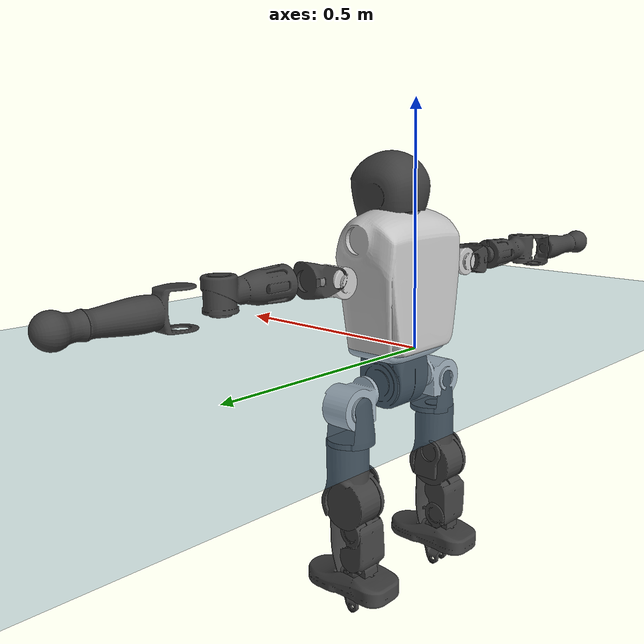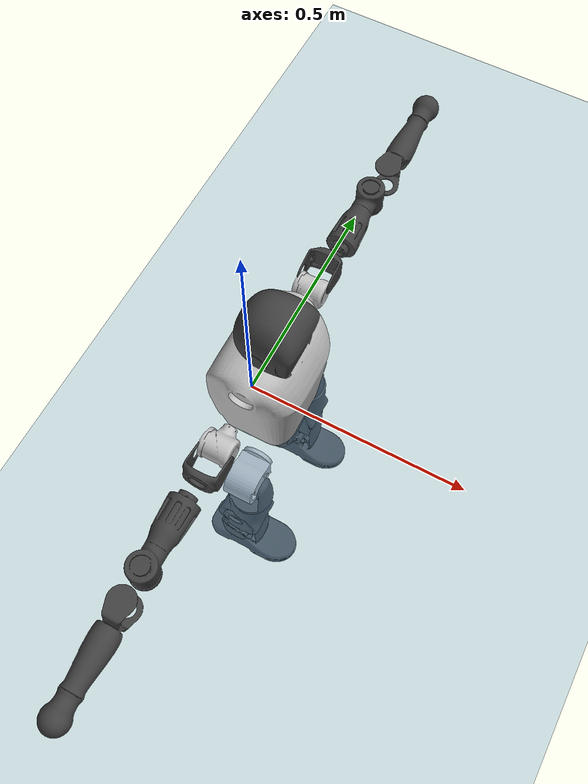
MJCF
<mujoco model="T1">
  <compiler angle="radian" assetdir="assets" balanceinertia="true" inertiafromgeom="false"/>

  <option timestep="0.005" density="1.2" viscosity="2e-05"/>

  <size nkey="1"/>

  <visual>
    <quality shadowsize="8192"/>
    <map shadowclip="0.5"/>
  </visual>

  <default>
    <default class="/">
      <joint armature="0.01" damping="0.01" frictionloss="0.1"/>
      <geom contype="0" conaffinity="0" group="1" solref="-1000 -80"/>
      <site size="0.01 0.005 0.005" group="5"/>
      <general forcelimited="true" biastype="affine" gainprm="25" biasprm="0 -25 -0.6"/>
      <default class="t1">
        <geom rgba="0.25 0.25 0.25 1"/>
        <default class="visual">
          <geom type="mesh" group="2"/>
        </default>
        <default class="collision">
          <geom group="3"/>
        </default>
        <default class="foot">
          <geom size="0.1115 0.05 0.015" type="box" condim="6" group="4" priority="1" solimp="0.015 1 0.015"/>
        </default>
        <default class="reward_collision_sphere">
          <geom group="5" rgba="1 0 0 1"/>
        </default>
      </default>
    </default>
  </default>

  <asset>
    <texture type="skybox" colorspace="auto" name="//unnamed_texture_0" builtin="gradient" rgb1="0.95 0.95 0.95" rgb2="0.95 0.95 0.95" width="100" height="600"/>
    <texture type="2d" colorspace="auto" name="texplane" builtin="checker" rgb1="0.345 0.575 0.748" rgb2="0.345 0.575 0.748" markrgb="1 1 1" width="512" height="512"/>
    <material name="MatPlane" class="/" texture="texplane" texuniform="true" texrepeat="2 2" specular="0.9"/>
    <mesh name="Trunk" class="/" file="Trunk.stl"/>
    <mesh name="H1" class="/" file="H1.stl"/>
    <mesh name="H2" class="/" file="H2.stl"/>
    <mesh name="AL1" class="/" file="AL1.stl"/>
    <mesh name="AL2" class="/" file="AL2.stl"/>
    <mesh name="AL3" class="/" file="AL3.stl"/>
    <mesh name="left_hand_link" class="/" file="left_hand_link.stl"/>
    <mesh name="AR1" class="/" file="AR1.stl"/>
    <mesh name="AR2" class="/" file="AR2.stl"/>
    <mesh name="AR3" class="/" file="AR3.stl"/>
    <mesh name="right_hand_link" class="/" file="right_hand_link.stl"/>
    <mesh name="Waist" class="/" file="Waist.stl"/>
    <mesh name="Hip_Pitch_Left" class="/" file="Hip_Pitch_Left.stl"/>
    <mesh name="Hip_Roll_Left" class="/" file="Hip_Roll_Left.stl"/>
    <mesh name="Hip_Yaw_Left" class="/" file="Hip_Yaw_Left.stl"/>
    <mesh name="Shank_Left" class="/" file="Shank_Left.stl"/>
    <mesh name="Ankle_Cross_Left" class="/" file="Ankle_Cross_Left.stl"/>
    <mesh name="left_foot_link" class="/" file="left_foot_link.stl"/>
    <mesh name="Hip_Pitch_Right" class="/" file="Hip_Pitch_Right.stl"/>
    <mesh name="Hip_Roll_Right" class="/" file="Hip_Roll_Right.stl"/>
    <mesh name="Hip_Yaw_Right" class="/" file="Hip_Yaw_Right.stl"/>
    <mesh name="Shank_Right" class="/" file="Shank_Right.stl"/>
    <mesh name="Ankle_Cross_Right" class="/" file="Ankle_Cross_Right.stl"/>
    <mesh name="right_foot_link" class="/" file="right_foot_link.stl"/>
  </asset>

  <worldbody>
    <geom name="floor" class="/" size="100 100 0.125" type="plane" group="0" material="MatPlane"/>
    <light name="toplight_shadow" class="/" pos="0 0 5" dir="0.0990148 0.0990148 -0.990148" type="directional" ambient="0.04 0.04 0.04" diffuse="0.55 0.55 0.55" specular="0.12 0.12 0.12"/>
    <light name="toplight_fill" class="/" pos="0 0 5" dir="0.0990148 0.0990148 -0.990148" type="directional" castshadow="false" ambient="0.04 0.04 0.04" diffuse="0.3 0.3 0.3" specular="0.08 0.08 0.08"/>
    <body name="trunk" childclass="t1" pos="-0.00143877 -0.00679957 0.0111754" quat="0.999982 -0.00324847 -0.000763205 0.00506575">
      <inertial pos="0.0557802 0.000234609 0.0750375" quat="0.999936 0.00384232 -0.0105717 -0.00152787" mass="14.974" diaginertia="0.109946 0.514151 0.0116838"/>
      <joint name="//unnamed_joint_0" type="free" armature="0" damping="0" frictionloss="0"/>
      <geom name="//unnamed_geom_1" class="visual" rgba="0.76 0.76 0.76 1" mesh="Trunk"/>
      <geom name="//unnamed_geom_2" class="collision" size="0.0787403 0.104987 0.157481" pos="0.0599674 0 0.0845114" type="box"/>
      <geom name="//unnamed_geom_3" class="reward_collision_sphere" size="0.120735" pos="0.0599674 0 0.0704262"/>
      <geom name="//unnamed_geom_4" class="reward_collision_sphere" size="0.0157481" pos="0.0599674 0.122901 0"/>
      <geom name="//unnamed_geom_5" class="reward_collision_sphere" size="0.0157481" pos="0.0599674 -0.122901 0"/>
      <geom name="//unnamed_geom_6" class="reward_collision_sphere" size="0.0157481" pos="0.0599674 0.15471 0.126767"/>
      <geom name="//unnamed_geom_7" class="reward_collision_sphere" size="0.0157481" pos="0.0599674 -0.15471 0.126767"/>
      <site name="imu" pos="0.0548799 -0.00210573 -0.00804765" size="0.0104987"/>
      <camera name="track" pos="0 -2.89178 0" quat="0.707107 0.707107 0 0" mode="trackcom"/>
      <camera name="ego_camera" pos="0.121934 0 0.29579" quat="-0.5 -0.5 0.5 0.5"/>
      <body name="H1" pos="0.0554437 -0.000864854 0.163686" quat="0.999986 -0.0011026 -0.00194336 -0.00473706">
        <inertial pos="-0.00927825 -0.00710209 0.0385058" quat="0.764336 -0.0182001 0.0024109 0.644556" mass="0.465159" diaginertia="0.00022172 0.00122445 2.80358e-05"/>
        <joint name="AAHead_yaw" pos="0 0 0" axis="0.000326292 -0.00403655 0.999992" range="-1.31487 1.6168" armature="0.0107664" damping="0.0311172" frictionloss="0.0852974"/>
        <geom name="//unnamed_geom_8" class="visual" mesh="H1"/>
        <body name="H2" pos="0.00186907 -0.00226599 0.0357357" quat="0.999983 0.00335602 -0.00159149 0.00449819">
          <inertial pos="0.0067121 0.000853314 0.0679941" quat="0.988401 0.107213 -0.075778 -0.076334" mass="0.855105" diaginertia="0.00226584 0.0136692 0.000302954"/>
          <joint name="Head_pitch" pos="0 0 0" axis="0.0340965 -0.998554 -0.0415627" stiffness="0.0225163" range="-1.06317 0.127903" armature="0.00556985" damping="0" frictionloss="0.0436344"/>
          <geom name="//unnamed_geom_9" class="visual" mesh="H2"/>
          <geom name="//unnamed_geom_10" class="collision" size="0.0839896" pos="0.00999457 0 0.0774688"/>
          <geom name="//unnamed_geom_11" class="reward_collision_sphere" size="0.0944883" pos="0.0199891 0 0.0704262"/>
        </body>
      </body>
      <body name="AL1" pos="0.0462567 0.147634 0.148879" quat="1 0.000259669 0.00027506 -0.000177251">
        <inertial pos="0.0112511 0.0692086 0.00479391" quat="0.51063 0.480885 -0.482078 0.524983" mass="0.663641" diaginertia="0.00142738 0.00740234 5.43252e-05"/>
        <joint name="Left_Shoulder_Pitch" pos="0 0 0" axis="-0.000118661 0.999995 0.00320901" stiffness="0.00340321" range="-3.29454 1.23307" armature="0.0106088" damping="0" frictionloss="0.126044"/>
        <geom name="//unnamed_geom_12" class="visual" rgba="0.76 0.76 0.76 1" mesh="AL1"/>
        <body name="AL2" pos="-0.000980965 0.0709441 0.0116964" quat="0.999985 0.0020779 -0.0013849 0.00492143">
          <inertial pos="0.00753554 0.0531925 0.00981968" quat="0.490492 0.524872 -0.471185 0.511773" mass="0.168863" diaginertia="0.000418658 0.00240957 3.04288e-05"/>
          <joint name="Left_Shoulder_Roll" pos="0 0 0" axis="-0.998435 0.0466039 0.0309215" range="-1.53767 1.77348" armature="0.0102792" damping="0.00636941" frictionloss="0.163304"/>
          <geom name="//unnamed_geom_13" class="visual" mesh="AL2"/>
          <body name="AL3" pos="0.0115036 0.0923913 0.00106389" quat="1 -9.70252e-05 9.56535e-06 -0.000333173">
            <inertial pos="0.000969183 0.12354 -0.010093" quat="0.708238 0.705953 -0.00448902 0.00304279" mass="1.15321" diaginertia="0.0119908 0.07944 0.000113772"/>
            <joint name="Left_Elbow_Pitch" pos="0 0 0" axis="-0.039489 -0.998655 -0.0335975" stiffness="0.00112975" range="-2.29144 2.26908" armature="0.0120819" damping="0.00482387" frictionloss="0.0832"/>
            <geom name="//unnamed_geom_14" class="visual" mesh="AL3"/>
            <geom name="//unnamed_geom_15" class="collision" size="0.0314961 0.0787403" pos="0 0.0722946 0" quat="0.707105 0.707108 0 0" type="cylinder"/>
            <geom name="//unnamed_geom_16" class="reward_collision_sphere" size="0.0377953"/>
            <body name="left_hand_link" pos="0.00692678 0.223274 -0.0121241" quat="0.999999 0.00133043 -3.86335e-05 -0.00105755">
              <inertial pos="-0.000590858 0.153734 -0.00739467" quat="0.708168 0.706013 0.000499909 0.00663234" mass="0.339082" diaginertia="0.00792412 0.0397994 3.1512e-05"/>
              <joint name="Left_Elbow_Yaw" pos="0 0 0" axis="-0.0102559 -0.048229 0.998784" stiffness="0.0381988" range="-2.49688 0.0296341" armature="0.0107582" damping="0.0151841" frictionloss="0.0701436"/>
              <geom name="//unnamed_geom_17" class="visual" mesh="left_hand_link"/>
              <geom name="//unnamed_geom_18" class="collision" size="0.0314961 0.0918636" pos="0 0.187966 0" quat="0.707105 0.707108 0 0" type="cylinder"/>
              <geom name="//unnamed_geom_19" class="reward_collision_sphere" size="0.0524935"/>
              <geom name="//unnamed_geom_20" class="reward_collision_sphere" size="0.0367455" pos="0 0.159048 0"/>
              <geom name="//unnamed_geom_21" class="reward_collision_sphere" size="0.0367455" pos="0 0.310867 0"/>
            </body>
          </body>
        </body>
      </body>
      <body name="AR1" pos="0.0491043 -0.152491 0.144912" quat="0.999986 0.00422186 0.000131286 -0.00306039">
        <inertial pos="-0.000476543 -0.0604601 -0.00152015" quat="0.485058 0.501379 -0.503795 0.50944" mass="0.628273" diaginertia="0.00157882 0.00868224 5.17788e-05"/>
        <joint name="Right_Shoulder_Pitch" pos="0 0 0" axis="0.0010722 -0.999933 0.0115282" stiffness="0.0478992" range="-1.21767 3.17364" armature="0.0117259" damping="0.0530119" frictionloss="0.106648"/>
        <geom name="//unnamed_geom_22" class="visual" rgba="0.76 0.76 0.76 1" mesh="AR1"/>
        <body name="AR2" pos="-0.00100727 -0.0706249 -0.00256732" quat="0.999995 -0.0030831 0.00102113 0.000117612">
          <inertial pos="0.00780958 -0.0538871 -0.00715916" quat="0.507502 0.493569 -0.512829 0.485633" mass="0.207578" diaginertia="0.000338979 0.00219081 3.43326e-05"/>
          <joint name="Right_Shoulder_Roll" pos="0 0 0" axis="-0.999948 0.00458988 -0.00907178" range="-1.78419 1.60039" armature="0.00985168" damping="0" frictionloss="0.053571"/>
          <geom name="//unnamed_geom_23" class="visual" mesh="AR2"/>
          <body name="AR3" pos="-0.00147848 -0.0966343 0.00275289" quat="0.999999 -0.000292313 -0.000804394 0.000630965">
            <inertial pos="0.0116864 -0.121668 -0.00156518" quat="0.682502 0.730744 0.0119539 -0.00784145" mass="1.00696" diaginertia="0.0137836 0.0891916 0.000107132"/>
            <joint name="Right_Elbow_Pitch" pos="0 0 0" axis="-0.022089 0.99964 -0.0152593" stiffness="0.0612287" range="-2.28093 2.37329" armature="0.0153375" damping="0.0115717" frictionloss="0.102937"/>
            <geom name="//unnamed_geom_24" class="visual" mesh="AR3"/>
            <geom name="//unnamed_geom_25" class="collision" size="0.0314961 0.0787403" pos="0 -0.0722946 0" quat="0.707105 0.707108 0 0" type="cylinder"/>
            <geom name="//unnamed_geom_26" class="reward_collision_sphere" size="0.0377953"/>
            <body name="right_hand_link" pos="-0.000285508 -0.213173 -0.011791" quat="1 -0.000394814 0.00052642 -0.00035195">
              <inertial pos="0.0069454 -0.166572 0.00304791" quat="0.705428 0.70867 -0.0104353 0.00705057" mass="0.402957" diaginertia="0.0082504 0.0571024 3.71143e-05"/>
              <joint name="Right_Elbow_Yaw" pos="0 0 0" axis="-0.0130789 -0.00521249 0.999901" stiffness="0.0116505" range="-0.0113817 2.42216" armature="0.0123867" damping="0.0309255" frictionloss="0.109916"/>
              <geom name="//unnamed_geom_27" class="visual" mesh="right_hand_link"/>
              <geom name="//unnamed_geom_28" class="collision" size="0.0314961 0.0918636" pos="0 -0.187966 0" quat="0.707105 0.707108 0 0" type="cylinder"/>
              <geom name="//unnamed_geom_29" class="reward_collision_sphere" size="0.0524935"/>
              <geom name="//unnamed_geom_30" class="reward_collision_sphere" size="0.0367455" pos="0 -0.159048 0"/>
              <geom name="//unnamed_geom_31" class="reward_collision_sphere" size="0.0367455" pos="0 -0.310867 0"/>
            </body>
          </body>
        </body>
      </body>
      <body name="Waist" pos="0.0637667 0.000467157 -0.0889495" quat="1 0.000225062 -0.00013032 -0.000267933">
        <inertial pos="-0.00329244 0.00134208 0.00124243" quat="0.982294 -0.00176372 -0.187319 0.00264804" mass="2.94817" diaginertia="0.00569172 0.0286048 0.00087136"/>
        <joint name="Waist" pos="0 0 0" axis="0.00199989 0.00977761 0.99995" stiffness="0.0313287" range="-1.41152 1.46456" armature="0.0117778" damping="0.0604658" frictionloss="0.0981917"/>
        <geom name="//unnamed_geom_32" class="visual" mesh="Waist"/>
        <body name="Hip_Pitch_Left" pos="0.00229206 0.140949 -0.0101348" quat="1 -0.000197595 0.000691308 -0.00051584">
          <inertial pos="0.00737945 -0.00927736 -0.000668228" quat="0.97327 0.228958 0.0179789 -0.000470179" mass="1.03195" diaginertia="0.0016642 0.00941307 0.000216596"/>
          <joint name="Left_Hip_Pitch" pos="0 0 0" axis="-0.00944033 0.999529 -0.0291941" stiffness="0.0437814" range="-1.97909 1.59854" armature="0.0105044" damping="0.0534413" frictionloss="0.154037"/>
          <geom name="//unnamed_geom_33" class="visual" rgba="0.76 0.76 0.76 1" mesh="Hip_Pitch_Left"/>
          <body name="Hip_Roll_Left" pos="-0.00447032 0.00115575 -0.0171951" quat="1 6.34831e-05 0.000319151 0.000322862">
            <inertial pos="0.000404467 0.0011194 -0.0378088" quat="0.720582 0.00320594 0.0011689 0.693362" mass="0.398999" diaginertia="0.00158979 0.00800692 8.20385e-05"/>
            <joint name="Left_Hip_Roll" pos="0 0 0" axis="-0.999881 -0.0108028 0.0110331" range="-1.72264 0.178778" armature="0.0102875" damping="0" frictionloss="0.14485"/>
            <geom name="//unnamed_geom_34" class="visual" mesh="Hip_Roll_Left"/>
            <geom name="//unnamed_geom_35" class="reward_collision_sphere" size="0.0577429"/>
            <body name="Hip_Yaw_Left" pos="0.00854424 -0.00082518 -0.0701977" quat="1 -0.000227277 -0.000136861 -0.000360976">
              <inertial pos="-0.0082232 0.00144416 -0.0520882" quat="0.702223 -0.0355212 -0.0175094 0.710855" mass="2.78635" diaginertia="0.0219591 0.157378 0.000466775"/>
              <joint name="Left_Hip_Yaw" pos="0 0 0" axis="-0.0356243 -0.0189715 -0.999185" stiffness="0.0621313" range="-1.04166 0.842863" armature="0.0147991" damping="0.0392292" frictionloss="0.157327"/>
              <geom name="//unnamed_geom_36" class="visual" mesh="Hip_Yaw_Left"/>
              <geom name="//unnamed_geom_37" class="collision" size="0.0524935 0.0839896" type="cylinder"/>
              <body name="Shank_Left" pos="-0.00773574 -0.0106202 -0.104151" quat="0.999983 -0.00493897 0.00118526 -0.00293986">
                <inertial pos="-0.011128 0.0129963 -0.0840628" quat="0.99292 0.0159072 -0.038345 0.111292" mass="1.83801" diaginertia="0.0288238 0.202238 0.000306314"/>
                <joint name="Left_Knee_Pitch" pos="0 0 0" axis="-0.019634 0.999643 0.0181378" stiffness="0.00308775" range="0.0388565 2.32026" armature="0.0064304" damping="0.0164548" frictionloss="0.160115"/>
                <geom name="//unnamed_geom_38" class="visual" mesh="Shank_Left"/>
                <geom name="//unnamed_geom_39" class="collision" size="0.0524935 0.0787403" pos="0 0 -0.0845114" type="cylinder"/>
                <geom name="//unnamed_geom_40" class="reward_collision_sphere" size="0.0682416"/>
                <body name="Ankle_Cross_Left" pos="0.0117862 0.00336094 -0.198754" quat="1 8.22112e-05 0.000112608 0.000455783">
                  <inertial pos="-0.00307344 -0.000648777 -0.00442075" quat="0.445365 0.508157 0.590041 0.441902" mass="0.0786547" diaginertia="2.87227e-05 0.000156037 1.93015e-06"/>
                  <joint name="Left_Ankle_Pitch" pos="0 0 0" axis="0.0253297 0.99948 -0.01996" range="-0.84911 0.546101" armature="0.011528" damping="0.0062528" frictionloss="0.0963903"/>
                  <geom name="//unnamed_geom_41" class="visual" mesh="Ankle_Cross_Left"/>
                  <body name="left_foot_link" pos="-0.00777483 0.00161867 -0.0105066" quat="0.999994 -0.00162108 0.00264084 0.00122889">
                    <inertial pos="0.000722766 -0.000101196 -0.0188549" quat="0.000995157 0.620788 -1.16578e-05 0.783978" mass="0.89434" diaginertia="0.00307347 0.0155048 0.000421785"/>
                    <joint name="Left_Ankle_Roll" pos="0 0 0" axis="-0.999547 -0.0135794 0.0268567" range="-0.292868 0.352876" armature="0.0105387" damping="0" frictionloss="0.104258"/>
                    <geom name="//unnamed_geom_42" class="visual" mesh="left_foot_link"/>
                    <geom name="left_foot" class="foot" size="0.0710723 0.0309645 0.0130068" pos="0.00999457 0 -0.0105639"/>
                    <geom name="//unnamed_geom_44" class="reward_collision_sphere" size="0.0545932" pos="0.00999457 0 -0.0105639"/>
                    <geom name="//unnamed_geom_45" class="reward_collision_sphere" size="0.0314961" pos="0.0949484 -0.0332555 -0.0105639"/>
                    <geom name="//unnamed_geom_46" class="reward_collision_sphere" size="0.0314961" pos="-0.069962 -0.0332555 -0.0105639"/>
                    <site name="left_foot" class="foot" pos="0.00999457 0 -0.0105639" size="0.0104987"/>
                  </body>
                </body>
              </body>
            </body>
          </body>
        </body>
        <body name="Hip_Pitch_Right" pos="0.00799493 -0.154249 -0.00986753" quat="0.999985 0.00417171 -0.00326583 -0.00118114">
          <inertial pos="0.000943274 0.0228136 -0.0146424" quat="0.975798 -0.217964 0.0114953 0.0133302" mass="1.14893" diaginertia="0.00175649 0.00896086 0.000196799"/>
          <joint name="Right_Hip_Pitch" pos="0 0 0" axis="-0.00114871 -0.999986 -0.00520493" stiffness="0.0291023" range="-1.6996 1.99443" armature="0.0109509" damping="0" frictionloss="0.04417"/>
          <geom name="//unnamed_geom_47" class="visual" rgba="0.76 0.76 0.76 1" mesh="Hip_Pitch_Right"/>
          <body name="Hip_Roll_Right" pos="0.0100936 -0.00170374 -0.0224913" quat="1 -0.000218336 -0.000374366 0.000336032">
            <inertial pos="0.00426304 0.000750479 -0.0426317" quat="0.706475 -0.00490702 -0.00717314 0.707685" mass="0.444075" diaginertia="0.0020143 0.00914726 8.56535e-05"/>
            <joint name="Right_Hip_Roll" pos="0 0 0" axis="-0.999655 -0.01095 0.0238781" range="-0.337081 1.64039" armature="0.00917452" damping="0.0305548" frictionloss="0.0576676"/>
            <geom name="//unnamed_geom_48" class="visual" mesh="Hip_Roll_Right"/>
            <geom name="//unnamed_geom_49" class="reward_collision_sphere" size="0.0577429"/>
            <body name="Hip_Yaw_Right" pos="-0.00876122 -0.00256799 -0.0670559" quat="1 0.000108519 0.000108981 -0.000836891">
              <inertial pos="0.00213569 -0.0126235 -0.064063" quat="0.715369 -0.037004 -0.0296049 0.697138" mass="3.01906" diaginertia="0.0258771 0.177931 0.000542814"/>
              <joint name="Right_Hip_Yaw" pos="0 0 0" axis="0.0099725 -0.0141144 -0.999851" stiffness="0.00313577" range="-1.01938 1.01112" armature="0.0109978" damping="0" frictionloss="0.107554"/>
              <geom name="//unnamed_geom_50" class="visual" mesh="Hip_Yaw_Right"/>
              <geom name="//unnamed_geom_51" class="collision" size="0.0524935 0.0839896" type="cylinder"/>
              <body name="Shank_Right" pos="-0.0155854 -0.00186832 -0.106173" quat="1 0.000277117 0.000189267 -0.000379471">
                <inertial pos="0.00727474 -0.00349395 -0.0792635" quat="0.99962 -0.00782417 -0.00720631 0.0254237" mass="2.1567" diaginertia="0.0407819 0.227612 0.000395289"/>
                <joint name="Right_Knee_Pitch" pos="0 0 0" axis="0.00273036 -0.999996 -0.00096823" range="-2.34961 0.202697" armature="0.0115485" damping="0.0046563" frictionloss="0.143693"/>
                <geom name="//unnamed_geom_52" class="visual" mesh="Shank_Right"/>
                <geom name="//unnamed_geom_53" class="collision" size="0.0524935 0.0787403" pos="0 0 -0.0845114" type="cylinder"/>
                <geom name="//unnamed_geom_54" class="reward_collision_sphere" size="0.0682416"/>
                <body name="Ankle_Cross_Right" pos="0.0053424 0.00459196 -0.187534" quat="0.999999 0.00143171 -0.000725893 0.000126441">
                  <inertial pos="-0.00557707 0.00542681 -0.00663926" quat="0.420466 0.547071 0.563682 0.454076" mass="0.0933288" diaginertia="3.03276e-05 0.000166979 2.03143e-06"/>
                  <joint name="Right_Ankle_Pitch" pos="0 0 0" axis="-0.0078504 -0.999968 0.00182455" stiffness="0.00214005" range="-0.610092 0.737111" armature="0.0106532" damping="0" frictionloss="0.112154"/>
                  <geom name="//unnamed_geom_55" class="visual" mesh="Ankle_Cross_Right"/>
                  <body name="right_foot_link" pos="-9.75353e-05 0.000599876 -0.015161" quat="1 -0.000541626 -0.000608604 -0.000232004">
                    <inertial pos="0.000361132 0.00365794 -0.0184564" quat="-0.00079902 0.62158 0.00175733 0.783348" mass="0.797373" diaginertia="0.00262737 0.0162852 0.000388687"/>
                    <joint name="Right_Ankle_Roll" pos="0 0 0" axis="-0.999992 -0.00326223 -0.00244479" range="-0.397815 0.470541" armature="0.0106468" damping="0.0246342" frictionloss="0.0370932"/>
                    <geom name="//unnamed_geom_56" class="visual" mesh="right_foot_link"/>
                    <geom name="right_foot" class="foot" size="0.0841734 0.0769993 0.00810888" pos="0.00999457 0 -0.0105639"/>
                    <geom name="//unnamed_geom_58" class="reward_collision_sphere" size="0.0419948"/>
                    <geom name="//unnamed_geom_59" class="reward_collision_sphere" size="0.0314961" pos="0.00999457 0 -0.0105639"/>
                    <geom name="//unnamed_geom_60" class="reward_collision_sphere" size="0.0314961" pos="0.0949484 0.0332555 -0.0105639"/>
                    <geom name="//unnamed_geom_61" class="reward_collision_sphere" size="0.0314961" pos="-0.069962 0.0332555 -0.0105639"/>
                    <site name="right_foot" class="foot" pos="0.00999457 0 -0.0105639" size="0.0104987"/>
                  </body>
                </body>
              </body>
            </body>
          </body>
        </body>
      </body>
    </body>
  </worldbody>

  <contact>
    <pair class="/" geom1="floor" geom2="left_foot" name="//unnamed_contact_0"/>
    <pair class="/" geom1="floor" geom2="right_foot" name="//unnamed_contact_1"/>
  </contact>

  <actuator>
    <general name="AAHead_yaw" class="/" joint="AAHead_yaw" forcerange="-7.30434 7.30434" gainprm="20.6931" biasprm="0 -20.6931 -0.635076"/>
    <general name="Head_pitch" class="/" joint="Head_pitch" forcerange="-6.06487 6.06487" gainprm="20.6931" biasprm="0 -20.6931 -0.635076"/>
    <general name="Left_Shoulder_Pitch" class="/" joint="Left_Shoulder_Pitch" forcerange="-21.9717 21.9717" gainprm="20.6931" biasprm="0 -20.6931 -0.635076"/>
    <general name="Left_Shoulder_Roll" class="/" joint="Left_Shoulder_Roll" forcerange="-17.3369 17.3369" gainprm="20.6931" biasprm="0 -20.6931 -0.635076"/>
    <general name="Left_Elbow_Pitch" class="/" joint="Left_Elbow_Pitch" forcerange="-25.7102 25.7102" gainprm="20.6931" biasprm="0 -20.6931 -0.635076"/>
    <general name="Left_Elbow_Yaw" class="/" joint="Left_Elbow_Yaw" forcerange="-18.947 18.947" gainprm="20.6931" biasprm="0 -20.6931 -0.635076"/>
    <general name="Right_Shoulder_Pitch" class="/" joint="Right_Shoulder_Pitch" forcerange="-18.0506 18.0506" gainprm="20.6931" biasprm="0 -20.6931 -0.635076"/>
    <general name="Right_Shoulder_Roll" class="/" joint="Right_Shoulder_Roll" forcerange="-14.52 14.52" gainprm="20.6931" biasprm="0 -20.6931 -0.635076"/>
    <general name="Right_Elbow_Pitch" class="/" joint="Right_Elbow_Pitch" forcerange="-19.0519 19.0519" gainprm="20.6931" biasprm="0 -20.6931 -0.635076"/>
    <general name="Right_Elbow_Yaw" class="/" joint="Right_Elbow_Yaw" forcerange="-19.6911 19.6911" gainprm="20.6931" biasprm="0 -20.6931 -0.635076"/>
    <general name="Waist" class="/" joint="Waist" forcerange="-30.5947 30.5947" gainprm="20.6931" biasprm="0 -20.6931 -0.635076"/>
    <general name="Left_Hip_Pitch" class="/" joint="Left_Hip_Pitch" forcerange="-47.4551 47.4551" gainprm="20.6931" biasprm="0 -20.6931 -0.635076"/>
    <general name="Left_Hip_Roll" class="/" joint="Left_Hip_Roll" forcerange="-17.7804 17.7804" gainprm="20.6931" biasprm="0 -20.6931 -0.635076"/>
    <general name="Left_Hip_Yaw" class="/" joint="Left_Hip_Yaw" forcerange="-39.138 39.138" gainprm="20.6931" biasprm="0 -20.6931 -0.635076"/>
    <general name="Left_Knee_Pitch" class="/" joint="Left_Knee_Pitch" forcerange="-36.9266 36.9266" gainprm="20.6931" biasprm="0 -20.6931 -0.635076"/>
    <general name="Left_Ankle_Pitch" class="/" joint="Left_Ankle_Pitch" forcerange="-25.9221 25.9221" gainprm="20.6931" biasprm="0 -20.6931 -0.635076"/>
    <general name="Left_Ankle_Roll" class="/" joint="Left_Ankle_Roll" forcerange="-19.0971 19.0971" gainprm="20.6931" biasprm="0 -20.6931 -0.635076"/>
    <general name="Right_Hip_Pitch" class="/" joint="Right_Hip_Pitch" forcerange="-65.0847 65.0847" gainprm="20.6931" biasprm="0 -20.6931 -0.635076"/>
    <general name="Right_Hip_Roll" class="/" joint="Right_Hip_Roll" forcerange="-31.6048 31.6048" gainprm="20.6931" biasprm="0 -20.6931 -0.635076"/>
    <general name="Right_Hip_Yaw" class="/" joint="Right_Hip_Yaw" forcerange="-23.5661 23.5661" gainprm="20.6931" biasprm="0 -20.6931 -0.635076"/>
    <general name="Right_Knee_Pitch" class="/" joint="Right_Knee_Pitch" forcerange="-66.6062 66.6062" gainprm="20.6931" biasprm="0 -20.6931 -0.635076"/>
    <general name="Right_Ankle_Pitch" class="/" joint="Right_Ankle_Pitch" forcerange="-21.9774 21.9774" gainprm="20.6931" biasprm="0 -20.6931 -0.635076"/>
    <general name="Right_Ankle_Roll" class="/" joint="Right_Ankle_Roll" forcerange="-15.2068 15.2068" gainprm="20.6931" biasprm="0 -20.6931 -0.635076"/>
  </actuator>

  <sensor>
    <gyro site="imu" name="imu_angular_velocity"/>
    <velocimeter site="imu" name="imu_linear_velocity"/>
    <framelinvel objtype="site" objname="left_foot" name="left_foot_global_linear_velocity"/>
    <framelinvel objtype="site" objname="right_foot" name="right_foot_global_linear_velocity"/>
  </sensor>

  <keyframe>
    <key name="home" qpos="0 0 0.6385 1 0 0 0 0 0 0 1.4 0 -0.4 0 -1.4 0 0.4 0 -0.4 0 0 0.8 -0.4 0 0.4 0 0 -0.8 0.4 0"/>
  </keyframe>
</mujoco>
